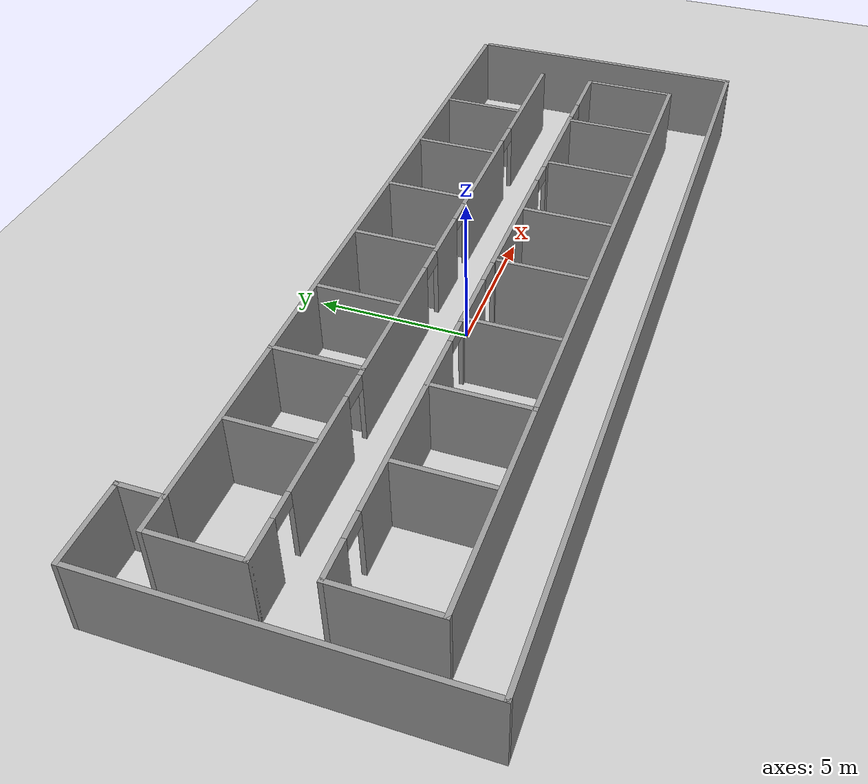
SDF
<sdf version="1.6">
 <world name="default">
  <light name="sun" type="directional">
   <pose>0 0 10 0 -0 0</pose>
   <diffuse>0.8 0.8 0.8 1</diffuse>
   <specular>0.2 0.2 0.2 1</specular>
   <attenuation>
    <range>1000</range>
    <constant>0.9</constant>
    <linear>0.01</linear>
    <quadratic>0.001</quadratic>
   </attenuation>
   <direction>-0.5 0.1 -0.9</direction>
  </light>
  <model name="ground_plane">
   <static>1</static>
   <link name="link">
    <collision name="collision">
     <geometry><plane><normal>0 0 1</normal><size>100 100</size></plane></geometry>
     <surface>
      <contact><collide_bitmask>65535</collide_bitmask></contact>
      <friction><ode><mu>100</mu><mu2>50</mu2></ode></friction>
     </surface>
    </collision>
    <visual name="visual">
     <cast_shadows>0</cast_shadows>
     <geometry><plane><normal>0 0 1</normal><size>100 100</size></plane></geometry>
     <material>
      <script><uri>file://media/materials/scripts/gazebo.material</uri><name>Gazebo/Grey</name></script>
     </material>
    </visual>
   </link>
  </model>
  <gravity>0 0 -9.8</gravity>
  <magnetic_field>6e-06 2.3e-05 -4.2e-05</magnetic_field>
  <atmosphere type="adiabatic"/>
  <physics name="default_physics" default="0" type="ode">
   <max_step_size>0.001</max_step_size>
   <real_time_factor>1</real_time_factor>
   <real_time_update_rate>1000</real_time_update_rate>
  </physics>
  <scene><ambient>0.4 0.4 0.4 1</ambient><background>0.7 0.7 0.7 1</background><shadows>1</shadows></scene>
  <audio><device>default</device></audio>
  <spherical_coordinates>
   <surface_model>EARTH_WGS84</surface_model>
   <latitude_deg>0</latitude_deg>
   <longitude_deg>0</longitude_deg>
   <elevation>0</elevation>
   <heading_deg>0</heading_deg>
  </spherical_coordinates>
  <model name="se1f1.sdf">
   <pose>0.603085 -0.016779 0 0 -0 0</pose>
   <link name="Wall_1">
    <collision name="Wall_1_Collision">
     <geometry><box><size>2.75 0.15 2.5</size></box></geometry>
     <pose>0 0 1.25 0 -0 0</pose>
    </collision>
    <visual name="Wall_1_Visual">
     <pose>0 0 1.25 0 -0 0</pose>
     <geometry><box><size>2.75 0.15 2.5</size></box></geometry>
     <material>
      <script><uri>file://media/materials/scripts/gazebo.material</uri><name>Gazebo/Grey</name></script>
      <ambient>1 1 1 1</ambient>
     </material>
     <meta><layer>0</layer></meta>
    </visual>
    <pose>-12.75 5.55 0 0 -0 3.14159</pose>
   </link>
   <link name="Wall_12">
    <pose>-0.083793 -0.542517 0 0 -0 0</pose>
    <visual name="Wall_12_Visual_0">
     <pose>-11.817 0 1.25 0 -0 0</pose>
     <geometry><box><size>1.36604 0.15 2.5</size></box></geometry>
     <material>
      <script><uri>file://media/materials/scripts/gazebo.material</uri><name>Gazebo/Grey</name></script>
      <ambient>1 1 1 1</ambient>
     </material>
     <meta><layer>0</layer></meta>
    </visual>
    <collision name="Wall_12_Collision_0">
     <geometry><box><size>1.36604 0.15 2.5</size></box></geometry>
     <pose>-11.817 0 1.25 0 -0 0</pose>
    </collision>
    <visual name="Wall_12_Visual_1">
     <pose>-6.91209 0 1.25 0 -0 0</pose>
     <geometry><box><size>6.64375 0.15 2.5</size></box></geometry>
     <material>
      <script><uri>file://media/materials/scripts/gazebo.material</uri><name>Gazebo/Grey</name></script>
      <ambient>1 1 1 1</ambient>
     </material>
     <meta><layer>0</layer></meta>
    </visual>
    <collision name="Wall_12_Collision_1">
     <geometry><box><size>6.64375 0.15 2.5</size></box></geometry>
     <pose>-6.91209 0 1.25 0 -0 0</pose>
    </collision>
    <visual name="Wall_12_Visual_2">
     <pose>-1.64672 0 1.25 0 -0 0</pose>
     <geometry><box><size>2.08698 0.15 2.5</size></box></geometry>
     <material>
      <script><uri>file://media/materials/scripts/gazebo.material</uri><name>Gazebo/Grey</name></script>
      <ambient>1 1 1 1</ambient>
     </material>
     <meta><layer>0</layer></meta>
    </visual>
    <collision name="Wall_12_Collision_2">
     <geometry><box><size>2.08698 0.15 2.5</size></box></geometry>
     <pose>-1.64672 0 1.25 0 -0 0</pose>
    </collision>
    <visual name="Wall_12_Visual_3">
     <pose>2.73018 0 1.25 0 -0 0</pose>
     <geometry><box><size>4.86683 0.15 2.5</size></box></geometry>
     <material>
      <script><uri>file://media/materials/scripts/gazebo.material</uri><name>Gazebo/Grey</name></script>
      <ambient>1 1 1 1</ambient>
     </material>
     <meta><layer>0</layer></meta>
    </visual>
    <collision name="Wall_12_Collision_3">
     <geometry><box><size>4.86683 0.15 2.5</size></box></geometry>
     <pose>2.73018 0 1.25 0 -0 0</pose>
    </collision>
    <visual name="Wall_12_Visual_4">
     <pose>7.84292 0 1.25 0 -0 0</pose>
     <geometry><box><size>3.55866 0.15 2.5</size></box></geometry>
     <material>
      <script><uri>file://media/materials/scripts/gazebo.material</uri><name>Gazebo/Grey</name></script>
      <ambient>1 1 1 1</ambient>
     </material>
     <meta><layer>0</layer></meta>
    </visual>
    <collision name="Wall_12_Collision_4">
     <geometry><box><size>3.55866 0.15 2.5</size></box></geometry>
     <pose>7.84292 0 1.25 0 -0 0</pose>
    </collision>
    <visual name="Wall_12_Visual_5">
     <pose>11.5111 0 1.25 0 -0 0</pose>
     <geometry><box><size>1.97775 0.15 2.5</size></box></geometry>
     <material>
      <script><uri>file://media/materials/scripts/gazebo.material</uri><name>Gazebo/Grey</name></script>
      <ambient>1 1 1 1</ambient>
     </material>
     <meta><layer>0</layer></meta>
    </visual>
    <collision name="Wall_12_Collision_5">
     <geometry><box><size>1.97775 0.15 2.5</size></box></geometry>
     <pose>11.5111 0 1.25 0 -0 0</pose>
    </collision>
    <visual name="Wall_12_Visual_6">
     <pose>-10.684 0 2.25 0 -0 0</pose>
     <geometry><box><size>0.9 0.15 0.5</size></box></geometry>
     <material>
      <script><uri>file://media/materials/scripts/gazebo.material</uri><name>Gazebo/Grey</name></script>
      <ambient>1 1 1 1</ambient>
     </material>
     <meta><layer>0</layer></meta>
    </visual>
    <collision name="Wall_12_Collision_6">
     <geometry><box><size>0.9 0.15 0.5</size></box></geometry>
     <pose>-10.684 0 2.25 0 -0 0</pose>
    </collision>
    <visual name="Wall_12_Visual_7">
     <pose>-3.14021 0 2.25 0 -0 0</pose>
     <geometry><box><size>0.9 0.15 0.5</size></box></geometry>
     <material>
      <script><uri>file://media/materials/scripts/gazebo.material</uri><name>Gazebo/Grey</name></script>
      <ambient>1 1 1 1</ambient>
     </material>
     <meta><layer>0</layer></meta>
    </visual>
    <collision name="Wall_12_Collision_7">
     <geometry><box><size>0.9 0.15 0.5</size></box></geometry>
     <pose>-3.14021 0 2.25 0 -0 0</pose>
    </collision>
    <visual name="Wall_12_Visual_8">
     <pose>-0.153237 0 2.25 0 -0 0</pose>
     <geometry><box><size>0.9 0.15 0.5</size></box></geometry>
     <material>
      <script><uri>file://media/materials/scripts/gazebo.material</uri><name>Gazebo/Grey</name></script>
      <ambient>1 1 1 1</ambient>
     </material>
     <meta><layer>0</layer></meta>
    </visual>
    <collision name="Wall_12_Collision_8">
     <geometry><box><size>0.9 0.15 0.5</size></box></geometry>
     <pose>-0.153237 0 2.25 0 -0 0</pose>
    </collision>
    <visual name="Wall_12_Visual_9">
     <pose>5.61359 0 2.25 0 -0 0</pose>
     <geometry><box><size>0.9 0.15 0.5</size></box></geometry>
     <material>
      <script><uri>file://media/materials/scripts/gazebo.material</uri><name>Gazebo/Grey</name></script>
      <ambient>1 1 1 1</ambient>
     </material>
     <meta><layer>0</layer></meta>
    </visual>
    <collision name="Wall_12_Collision_9">
     <geometry><box><size>0.9 0.15 0.5</size></box></geometry>
     <pose>5.61359 0 2.25 0 -0 0</pose>
    </collision>
    <visual name="Wall_12_Visual_10">
     <pose>10.0723 0 2.25 0 -0 0</pose>
     <geometry><box><size>0.9 0.15 0.5</size></box></geometry>
     <material>
      <script><uri>file://media/materials/scripts/gazebo.material</uri><name>Gazebo/Grey</name></script>
      <ambient>1 1 1 1</ambient>
     </material>
     <meta><layer>0</layer></meta>
    </visual>
    <collision name="Wall_12_Collision_10">
     <geometry><box><size>0.9 0.15 0.5</size></box></geometry>
     <pose>10.0723 0 2.25 0 -0 0</pose>
    </collision>
   </link>
   <link name="Wall_13">
    <collision name="Wall_13_Collision">
     <geometry><box><size>3.25 0.15 2.5</size></box></geometry>
     <pose>0 0 1.25 0 -0 0</pose>
    </collision>
    <visual name="Wall_13_Visual">
     <pose>0 0 1.25 0 -0 0</pose>
     <geometry><box><size>3.25 0.15 2.5</size></box></geometry>
     <material>
      <script><uri>file://media/materials/scripts/gazebo.material</uri><name>Gazebo/Grey</name></script>
      <ambient>1 1 1 1</ambient>
     </material>
     <meta><layer>0</layer></meta>
    </visual>
    <pose>12.3412 -2.09252 0 0 -0 -1.5708</pose>
   </link>
   <link name="Wall_14">
    <collision name="Wall_14_Collision">
     <geometry><box><size>25 0.15 2.5</size></box></geometry>
     <pose>0 0 1.25 0 -0 0</pose>
    </collision>
    <visual name="Wall_14_Visual">
     <pose>0 0 1.25 0 -0 0</pose>
     <geometry><box><size>25 0.15 2.5</size></box></geometry>
     <material>
      <script><uri>file://media/materials/scripts/gazebo.material</uri><name>Gazebo/Grey</name></script>
      <ambient>1 1 1 1</ambient>
     </material>
     <meta><layer>0</layer></meta>
    </visual>
    <pose>-0.083793 -3.64252 0 0 -0 3.14159</pose>
   </link>
   <link name="Wall_15">
    <collision name="Wall_15_Collision">
     <geometry><box><size>3.25 0.15 2.5</size></box></geometry>
     <pose>0 0 1.25 0 -0 0</pose>
    </collision>
    <visual name="Wall_15_Visual">
     <pose>0 0 1.25 0 -0 0</pose>
     <geometry><box><size>3.25 0.15 2.5</size></box></geometry>
     <material>
      <script><uri>file://media/materials/scripts/gazebo.material</uri><name>Gazebo/Grey</name></script>
      <ambient>1 1 1 1</ambient>
     </material>
     <meta><layer>0</layer></meta>
    </visual>
    <pose>-12.5088 -2.09252 0 0 -0 1.5708</pose>
   </link>
   <link name="Wall_17">
    <collision name="Wall_17_Collision">
     <geometry><box><size>28.25 0.15 2.5</size></box></geometry>
     <pose>0 0 1.25 0 -0 0</pose>
    </collision>
    <visual name="Wall_17_Visual">
     <pose>0 0 1.25 0 -0 0</pose>
     <geometry><box><size>28.25 0.15 2.5</size></box></geometry>
     <material>
      <script><uri>file://media/materials/scripts/gazebo.material</uri><name>Gazebo/Grey</name></script>
      <ambient>1 1 1 1</ambient>
     </material>
     <meta><layer>0</layer></meta>
    </visual>
    <pose>0 -5.55 0 0 -0 0</pose>
   </link>
   <link name="Wall_18">
    <collision name="Wall_18_Collision">
     <geometry><box><size>9.75 0.15 2.5</size></box></geometry>
     <pose>0 0 1.25 0 -0 0</pose>
    </collision>
    <visual name="Wall_18_Visual">
     <pose>0 0 1.25 0 -0 0</pose>
     <geometry><box><size>9.75 0.15 2.5</size></box></geometry>
     <material>
      <script><uri>file://media/materials/scripts/gazebo.material</uri><name>Gazebo/Grey</name></script>
      <ambient>1 1 1 1</ambient>
     </material>
     <meta><layer>0</layer></meta>
    </visual>
    <pose>14.05 -0.75 0 0 -0 1.5708</pose>
   </link>
   <link name="Wall_20">
    <collision name="Wall_20_Collision">
     <geometry><box><size>25.5 0.15 2.5</size></box></geometry>
     <pose>0 0 1.25 0 -0 0</pose>
    </collision>
    <visual name="Wall_20_Visual">
     <pose>0 0 1.25 0 -0 0</pose>
     <geometry><box><size>25.5 0.15 2.5</size></box></geometry>
     <material>
      <script><uri>file://media/materials/scripts/gazebo.material</uri><name>Gazebo/Grey</name></script>
      <ambient>1 1 1 1</ambient>
     </material>
     <meta><layer>0</layer></meta>
    </visual>
    <pose>1.225 4.2 0 0 -0 0</pose>
   </link>
   <link name="Wall_22">
    <collision name="Wall_22_Collision">
     <geometry><box><size>3 0.15 2.5</size></box></geometry>
     <pose>0 0 1.25 0 -0 0</pose>
    </collision>
    <visual name="Wall_22_Visual">
     <pose>0 0 1.25 0 -0 0</pose>
     <geometry><box><size>3 0.15 2.5</size></box></geometry>
     <material>
      <script><uri>file://media/materials/scripts/gazebo.material</uri><name>Gazebo/Grey</name></script>
      <ambient>1 1 1 1</ambient>
     </material>
     <meta><layer>0</layer></meta>
    </visual>
    <pose>-8.51773 -2.08961 0 0 -0 -1.5708</pose>
   </link>
   <link name="Wall_24">
    <collision name="Wall_24_Collision">
     <geometry><box><size>3.25 0.15 2.5</size></box></geometry>
     <pose>0 0 1.25 0 -0 0</pose>
    </collision>
    <visual name="Wall_24_Visual">
     <pose>0 0 1.25 0 -0 0</pose>
     <geometry><box><size>3.25 0.15 2.5</size></box></geometry>
     <material>
      <script><uri>file://media/materials/scripts/gazebo.material</uri><name>Gazebo/Grey</name></script>
      <ambient>1 1 1 1</ambient>
     </material>
     <meta><layer>0</layer></meta>
    </visual>
    <pose>-5.542 -2.09097 0 0 -0 -1.5708</pose>
   </link>
   <link name="Wall_26">
    <collision name="Wall_26_Collision">
     <geometry><box><size>3 0.15 2.5</size></box></geometry>
     <pose>0 0 1.25 0 -0 0</pose>
    </collision>
    <visual name="Wall_26_Visual">
     <pose>0 0 1.25 0 -0 0</pose>
     <geometry><box><size>3 0.15 2.5</size></box></geometry>
     <material>
      <script><uri>file://media/materials/scripts/gazebo.material</uri><name>Gazebo/Grey</name></script>
      <ambient>1 1 1 1</ambient>
     </material>
     <meta><layer>0</layer></meta>
    </visual>
    <pose>-2.58277 -2.08137 0 0 -0 -1.5708</pose>
   </link>
   <link name="Wall_28">
    <collision name="Wall_28_Collision">
     <geometry><box><size>3 0.15 2.5</size></box></geometry>
     <pose>0 0 1.25 0 -0 0</pose>
    </collision>
    <visual name="Wall_28_Visual">
     <pose>0 0 1.25 0 -0 0</pose>
     <geometry><box><size>3 0.15 2.5</size></box></geometry>
     <material>
      <script><uri>file://media/materials/scripts/gazebo.material</uri><name>Gazebo/Grey</name></script>
      <ambient>1 1 1 1</ambient>
     </material>
     <meta><layer>0</layer></meta>
    </visual>
    <pose>0.401202 -2.08137 0 0 -0 -1.5708</pose>
   </link>
   <link name="Wall_3">
    <collision name="Wall_3_Collision">
     <geometry><box><size>1.5 0.15 2.5</size></box></geometry>
     <pose>0 0 1.25 0 -0 0</pose>
    </collision>
    <visual name="Wall_3_Visual">
     <pose>0 0 1.25 0 -0 0</pose>
     <geometry><box><size>1.5 0.15 2.5</size></box></geometry>
     <material>
      <script><uri>file://media/materials/scripts/gazebo.material</uri><name>Gazebo/Grey</name></script>
      <ambient>1 1 1 1</ambient>
     </material>
     <meta><layer>0</layer></meta>
    </visual>
    <pose>-11.45 4.875 0 0 -0 -1.5708</pose>
   </link>
   <link name="Wall_30">
    <collision name="Wall_30_Collision">
     <geometry><box><size>3 0.15 2.5</size></box></geometry>
     <pose>0 0 1.25 0 -0 0</pose>
    </collision>
    <visual name="Wall_30_Visual">
     <pose>0 0 1.25 0 -0 0</pose>
     <geometry><box><size>3 0.15 2.5</size></box></geometry>
     <material>
      <script><uri>file://media/materials/scripts/gazebo.material</uri><name>Gazebo/Grey</name></script>
      <ambient>1 1 1 1</ambient>
     </material>
     <meta><layer>0</layer></meta>
    </visual>
    <pose>3.34395 -2.08961 0 0 -0 -1.5708</pose>
   </link>
   <link name="Wall_32">
    <collision name="Wall_32_Collision">
     <geometry><box><size>3 0.15 2.5</size></box></geometry>
     <pose>0 0 1.25 0 -0 0</pose>
    </collision>
    <visual name="Wall_32_Visual">
     <pose>0 0 1.25 0 -0 0</pose>
     <geometry><box><size>3 0.15 2.5</size></box></geometry>
     <material>
      <script><uri>file://media/materials/scripts/gazebo.material</uri><name>Gazebo/Grey</name></script>
      <ambient>1 1 1 1</ambient>
     </material>
     <meta><layer>0</layer></meta>
    </visual>
    <pose>6.32792 -2.08961 0 0 -0 -1.5708</pose>
   </link>
   <link name="Wall_34">
    <collision name="Wall_34_Collision">
     <geometry><box><size>3 0.15 2.5</size></box></geometry>
     <pose>0 0 1.25 0 -0 0</pose>
    </collision>
    <visual name="Wall_34_Visual">
     <pose>0 0 1.25 0 -0 0</pose>
     <geometry><box><size>3 0.15 2.5</size></box></geometry>
     <material>
      <script><uri>file://media/materials/scripts/gazebo.material</uri><name>Gazebo/Grey</name></script>
      <ambient>1 1 1 1</ambient>
     </material>
     <meta><layer>0</layer></meta>
    </visual>
    <pose>9.31189 -2.08137 0 0 -0 -1.5708</pose>
   </link>
   <link name="Wall_36">
    <collision name="Wall_36_Collision">
     <geometry><box><size>2.75 0.15 2.5</size></box></geometry>
     <pose>0 0 1.25 0 -0 0</pose>
    </collision>
    <visual name="Wall_36_Visual">
     <pose>0 0 1.25 0 -0 0</pose>
     <geometry><box><size>2.75 0.15 2.5</size></box></geometry>
     <material>
      <script><uri>file://media/materials/scripts/gazebo.material</uri><name>Gazebo/Grey</name></script>
      <ambient>1 1 1 1</ambient>
     </material>
     <meta><layer>0</layer></meta>
    </visual>
    <pose>-8.50027 2.76716 0 0 -0 -1.5708</pose>
   </link>
   <link name="Wall_38">
    <collision name="Wall_38_Collision">
     <geometry><box><size>3 0.15 2.5</size></box></geometry>
     <pose>0 0 1.25 0 -0 0</pose>
    </collision>
    <visual name="Wall_38_Visual">
     <pose>0 0 1.25 0 -0 0</pose>
     <geometry><box><size>3 0.15 2.5</size></box></geometry>
     <material>
      <script><uri>file://media/materials/scripts/gazebo.material</uri><name>Gazebo/Grey</name></script>
      <ambient>1 1 1 1</ambient>
     </material>
     <meta><layer>0</layer></meta>
    </visual>
    <pose>-5.5351 2.78388 0 0 -0 -1.5708</pose>
   </link>
   <link name="Wall_4">
    <collision name="Wall_4_Collision">
     <geometry><box><size>1.25 0.15 2.5</size></box></geometry>
     <pose>0 0 1.25 0 -0 0</pose>
    </collision>
    <visual name="Wall_4_Visual">
     <pose>0 0 1.25 0 -0 0</pose>
     <geometry><box><size>1.25 0.15 2.5</size></box></geometry>
     <material>
      <script><uri>file://media/materials/scripts/gazebo.material</uri><name>Gazebo/Grey</name></script>
      <ambient>1 1 1 1</ambient>
     </material>
     <meta><layer>0</layer></meta>
    </visual>
    <pose>-12 4.2 0 0 -0 3.14159</pose>
   </link>
   <link name="Wall_40">
    <collision name="Wall_40_Collision">
     <geometry><box><size>2.75 0.15 2.5</size></box></geometry>
     <pose>0 0 1.25 0 -0 0</pose>
    </collision>
    <visual name="Wall_40_Visual">
     <pose>0 0 1.25 0 -0 0</pose>
     <geometry><box><size>2.75 0.15 2.5</size></box></geometry>
     <material>
      <script><uri>file://media/materials/scripts/gazebo.material</uri><name>Gazebo/Grey</name></script>
      <ambient>1 1 1 1</ambient>
     </material>
     <meta><layer>0</layer></meta>
    </visual>
    <pose>-2.54812 2.76716 0 0 -0 -1.5708</pose>
   </link>
   <link name="Wall_42">
    <collision name="Wall_42_Collision">
     <geometry><box><size>2.75 0.15 2.5</size></box></geometry>
     <pose>0 0 1.25 0 -0 0</pose>
    </collision>
    <visual name="Wall_42_Visual">
     <pose>0 0 1.25 0 -0 0</pose>
     <geometry><box><size>2.75 0.15 2.5</size></box></geometry>
     <material>
      <script><uri>file://media/materials/scripts/gazebo.material</uri><name>Gazebo/Grey</name></script>
      <ambient>1 1 1 1</ambient>
     </material>
     <meta><layer>0</layer></meta>
    </visual>
    <pose>0.40615 2.77806 0 0 -0 -1.5708</pose>
   </link>
   <link name="Wall_44">
    <collision name="Wall_44_Collision">
     <geometry><box><size>2.75 0.15 2.5</size></box></geometry>
     <pose>0 0 1.25 0 -0 0</pose>
    </collision>
    <visual name="Wall_44_Visual">
     <pose>0 0 1.25 0 -0 0</pose>
     <geometry><box><size>2.75 0.15 2.5</size></box></geometry>
     <material>
      <script><uri>file://media/materials/scripts/gazebo.material</uri><name>Gazebo/Grey</name></script>
      <ambient>1 1 1 1</ambient>
     </material>
     <meta><layer>0</layer></meta>
    </visual>
    <pose>3.34952 2.77806 0 0 -0 -1.5708</pose>
   </link>
   <link name="Wall_46">
    <collision name="Wall_46_Collision">
     <geometry><box><size>2.75 0.15 2.5</size></box></geometry>
     <pose>0 0 1.25 0 -0 0</pose>
    </collision>
    <visual name="Wall_46_Visual">
     <pose>0 0 1.25 0 -0 0</pose>
     <geometry><box><size>2.75 0.15 2.5</size></box></geometry>
     <material>
      <script><uri>file://media/materials/scripts/gazebo.material</uri><name>Gazebo/Grey</name></script>
      <ambient>1 1 1 1</ambient>
     </material>
     <meta><layer>0</layer></meta>
    </visual>
    <pose>6.32559 2.78897 0 0 -0 -1.5708</pose>
   </link>
   <link name="Wall_48">
    <collision name="Wall_48_Collision">
     <geometry><box><size>2.75 0.15 2.5</size></box></geometry>
     <pose>0 0 1.25 0 -0 0</pose>
    </collision>
    <visual name="Wall_48_Visual">
     <pose>0 0 1.25 0 -0 0</pose>
     <geometry><box><size>2.75 0.15 2.5</size></box></geometry>
     <material>
      <script><uri>file://media/materials/scripts/gazebo.material</uri><name>Gazebo/Grey</name></script>
      <ambient>1 1 1 1</ambient>
     </material>
     <meta><layer>0</layer></meta>
    </visual>
    <pose>9.33437 2.76716 0 0 -0 -1.5708</pose>
   </link>
   <link name="Wall_6">
    <collision name="Wall_6_Collision">
     <geometry><box><size>3 0.15 2.5</size></box></geometry>
     <pose>0 0 1.25 0 -0 0</pose>
    </collision>
    <visual name="Wall_6_Visual">
     <pose>0 0 1.25 0 -0 0</pose>
     <geometry><box><size>3 0.15 2.5</size></box></geometry>
     <material>
      <script><uri>file://media/materials/scripts/gazebo.material</uri><name>Gazebo/Grey</name></script>
      <ambient>1 1 1 1</ambient>
     </material>
     <meta><layer>0</layer></meta>
    </visual>
    <pose>-12.55 2.775 0 0 -0 -1.5708</pose>
   </link>
   <link name="Wall_7">
    <pose>-0.125 1.35 0 0 -0 0</pose>
    <visual name="Wall_7_Visual_0">
     <pose>-11.7909 0 1.25 0 -0 0</pose>
     <geometry><box><size>1.41815 0.15 2.5</size></box></geometry>
     <material>
      <script><uri>file://media/materials/scripts/gazebo.material</uri><name>Gazebo/Grey</name></script>
      <ambient>1 1 1 1</ambient>
     </material>
     <meta><layer>0</layer></meta>
    </visual>
    <collision name="Wall_7_Collision_0">
     <geometry><box><size>1.41815 0.15 2.5</size></box></geometry>
     <pose>-11.7909 0 1.25 0 -0 0</pose>
    </collision>
    <visual name="Wall_7_Visual_1">
     <pose>-8.39162 0 1.25 0 -0 0</pose>
     <geometry><box><size>3.58046 0.15 2.5</size></box></geometry>
     <material>
      <script><uri>file://media/materials/scripts/gazebo.material</uri><name>Gazebo/Grey</name></script>
      <ambient>1 1 1 1</ambient>
     </material>
     <meta><layer>0</layer></meta>
    </visual>
    <collision name="Wall_7_Collision_1">
     <geometry><box><size>3.58046 0.15 2.5</size></box></geometry>
     <pose>-8.39162 0 1.25 0 -0 0</pose>
    </collision>
    <visual name="Wall_7_Visual_2">
     <pose>-3.13716 0 1.25 0 -0 0</pose>
     <geometry><box><size>5.12846 0.15 2.5</size></box></geometry>
     <material>
      <script><uri>file://media/materials/scripts/gazebo.material</uri><name>Gazebo/Grey</name></script>
      <ambient>1 1 1 1</ambient>
     </material>
     <meta><layer>0</layer></meta>
    </visual>
    <collision name="Wall_7_Collision_2">
     <geometry><box><size>5.12846 0.15 2.5</size></box></geometry>
     <pose>-3.13716 0 1.25 0 -0 0</pose>
    </collision>
    <visual name="Wall_7_Visual_3">
     <pose>1.25609 0 1.25 0 -0 0</pose>
     <geometry><box><size>1.85805 0.15 2.5</size></box></geometry>
     <material>
      <script><uri>file://media/materials/scripts/gazebo.material</uri><name>Gazebo/Grey</name></script>
      <ambient>1 1 1 1</ambient>
     </material>
     <meta><layer>0</layer></meta>
    </visual>
    <collision name="Wall_7_Collision_3">
     <geometry><box><size>1.85805 0.15 2.5</size></box></geometry>
     <pose>1.25609 0 1.25 0 -0 0</pose>
    </collision>
    <visual name="Wall_7_Visual_4">
     <pose>5.16968 0 1.25 0 -0 0</pose>
     <geometry><box><size>4.16914 0.15 2.5</size></box></geometry>
     <material>
      <script><uri>file://media/materials/scripts/gazebo.material</uri><name>Gazebo/Grey</name></script>
      <ambient>1 1 1 1</ambient>
     </material>
     <meta><layer>0</layer></meta>
    </visual>
    <collision name="Wall_7_Collision_4">
     <geometry><box><size>4.16914 0.15 2.5</size></box></geometry>
     <pose>5.16968 0 1.25 0 -0 0</pose>
    </collision>
    <visual name="Wall_7_Visual_5">
     <pose>10.3271 0 1.25 0 -0 0</pose>
     <geometry><box><size>4.34575 0.15 2.5</size></box></geometry>
     <material>
      <script><uri>file://media/materials/scripts/gazebo.material</uri><name>Gazebo/Grey</name></script>
      <ambient>1 1 1 1</ambient>
     </material>
     <meta><layer>0</layer></meta>
    </visual>
    <collision name="Wall_7_Collision_5">
     <geometry><box><size>4.34575 0.15 2.5</size></box></geometry>
     <pose>10.3271 0 1.25 0 -0 0</pose>
    </collision>
    <visual name="Wall_7_Visual_6">
     <pose>-10.6319 0 2.25 0 -0 0</pose>
     <geometry><box><size>0.9 0.15 0.5</size></box></geometry>
     <material>
      <script><uri>file://media/materials/scripts/gazebo.material</uri><name>Gazebo/Grey</name></script>
      <ambient>1 1 1 1</ambient>
     </material>
     <meta><layer>0</layer></meta>
    </visual>
    <collision name="Wall_7_Collision_6">
     <geometry><box><size>0.9 0.15 0.5</size></box></geometry>
     <pose>-10.6319 0 2.25 0 -0 0</pose>
    </collision>
    <visual name="Wall_7_Visual_7">
     <pose>-6.15139 0 2.25 0 -0 0</pose>
     <geometry><box><size>0.9 0.15 0.5</size></box></geometry>
     <material>
      <script><uri>file://media/materials/scripts/gazebo.material</uri><name>Gazebo/Grey</name></script>
      <ambient>1 1 1 1</ambient>
     </material>
     <meta><layer>0</layer></meta>
    </visual>
    <collision name="Wall_7_Collision_7">
     <geometry><box><size>0.9 0.15 0.5</size></box></geometry>
     <pose>-6.15139 0 2.25 0 -0 0</pose>
    </collision>
    <visual name="Wall_7_Visual_8">
     <pose>-0.122932 0 2.25 0 -0 0</pose>
     <geometry><box><size>0.9 0.15 0.5</size></box></geometry>
     <material>
      <script><uri>file://media/materials/scripts/gazebo.material</uri><name>Gazebo/Grey</name></script>
      <ambient>1 1 1 1</ambient>
     </material>
     <meta><layer>0</layer></meta>
    </visual>
    <collision name="Wall_7_Collision_8">
     <geometry><box><size>0.9 0.15 0.5</size></box></geometry>
     <pose>-0.122932 0 2.25 0 -0 0</pose>
    </collision>
    <visual name="Wall_7_Visual_9">
     <pose>2.63511 0 2.25 0 -0 0</pose>
     <geometry><box><size>0.9 0.15 0.5</size></box></geometry>
     <material>
      <script><uri>file://media/materials/scripts/gazebo.material</uri><name>Gazebo/Grey</name></script>
      <ambient>1 1 1 1</ambient>
     </material>
     <meta><layer>0</layer></meta>
    </visual>
    <collision name="Wall_7_Collision_9">
     <geometry><box><size>0.9 0.15 0.5</size></box></geometry>
     <pose>2.63511 0 2.25 0 -0 0</pose>
    </collision>
    <visual name="Wall_7_Visual_10">
     <pose>7.70425 0 2.25 0 -0 0</pose>
     <geometry><box><size>0.9 0.15 0.5</size></box></geometry>
     <material>
      <script><uri>file://media/materials/scripts/gazebo.material</uri><name>Gazebo/Grey</name></script>
      <ambient>1 1 1 1</ambient>
     </material>
     <meta><layer>0</layer></meta>
    </visual>
    <collision name="Wall_7_Collision_10">
     <geometry><box><size>0.9 0.15 0.5</size></box></geometry>
     <pose>7.70425 0 2.25 0 -0 0</pose>
    </collision>
   </link>
   <link name="Wall_9">
    <collision name="Wall_9_Collision">
     <geometry><box><size>11.25 0.15 2.5</size></box></geometry>
     <pose>0 0 1.25 0 -0 0</pose>
    </collision>
    <visual name="Wall_9_Visual">
     <pose>0 0 1.25 0 -0 0</pose>
     <geometry><box><size>11.25 0.15 2.5</size></box></geometry>
     <material>
      <script><uri>file://media/materials/scripts/gazebo.material</uri><name>Gazebo/Grey</name></script>
      <ambient>1 1 1 1</ambient>
     </material>
     <meta><layer>0</layer></meta>
    </visual>
    <pose>-14.05 0 0 0 -0 -1.5708</pose>
   </link>
   <static>1</static>
  </model>
 </world>
</sdf>
